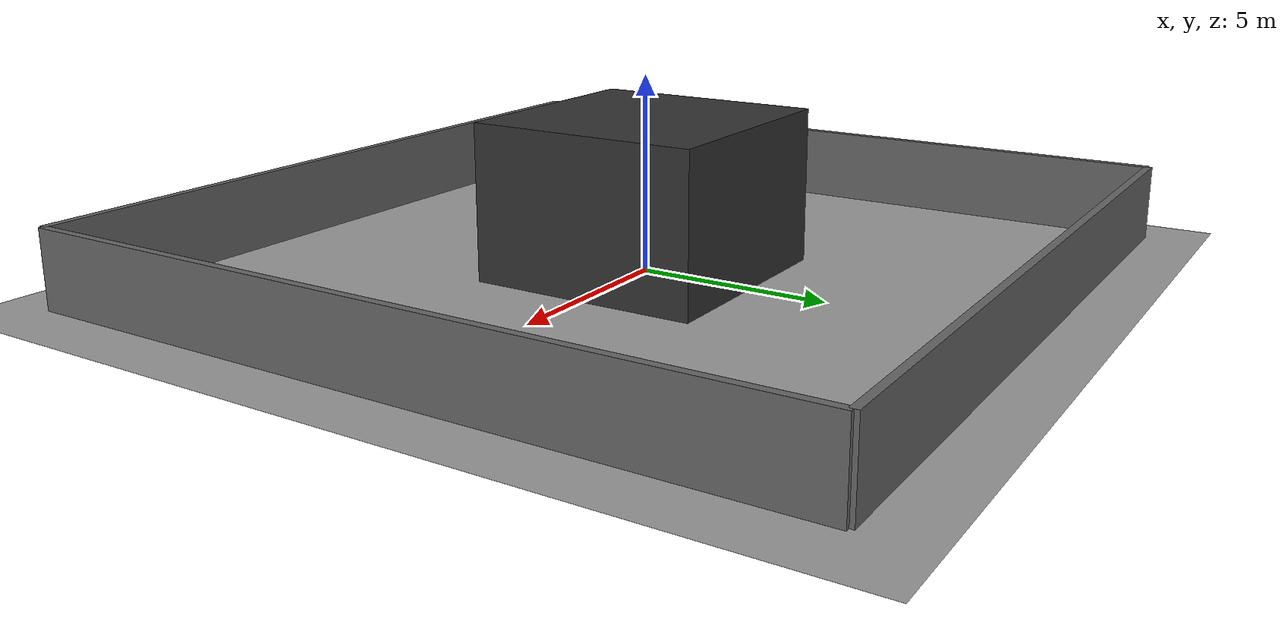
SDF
<?xml version="1.0" ?>
<!--
  World 1: Single large static obstacle directly on the robot's path.
  Robot start: x=-7, y=0  |  Goal: x=7, y=0
-->
<sdf version="1.7">
  <world name="world1_static_large">

    <gui>
      <camera name="user_camera">
        <pose>0 -20 18 0 0.8 1.5708</pose>
      </camera>
    </gui>

    <physics name="10ms" type="ode">
      <max_step_size>0.01</max_step_size>
      <real_time_factor>1.0</real_time_factor>
    </physics>

    <plugin filename="libignition-gazebo-physics-system.so"
            name="ignition::gazebo::systems::Physics"/>
    <plugin filename="libignition-gazebo-scene-broadcaster-system.so"
            name="ignition::gazebo::systems::SceneBroadcaster"/>
    <plugin filename="libignition-gazebo-user-commands-system.so"
            name="ignition::gazebo::systems::UserCommands"/>
    <plugin filename="libignition-gazebo-sensors-system.so"
            name="ignition::gazebo::systems::Sensors">
      <render_engine>ogre2</render_engine>
    </plugin>

    <light name="sun" type="directional">
      <cast_shadows>true</cast_shadows>
      <pose>0 0 20 0 0 0</pose>
      <diffuse>0.9 0.9 0.9 1</diffuse>
      <specular>0.3 0.3 0.3 1</specular>
      <attenuation><range>1000</range><constant>0.9</constant>
        <linear>0.01</linear><quadratic>0.001</quadratic></attenuation>
      <direction>-0.5 0.1 -0.9</direction>
    </light>

    <model name="ground_plane">
      <static>true</static>
      <link name="link">
        <collision name="collision">
          <geometry><plane><normal>0 0 1</normal><size>30 30</size></plane></geometry>
        </collision>
        <visual name="visual">
          <geometry><plane><normal>0 0 1</normal><size>30 30</size></plane></geometry>
          <material>
            <ambient>0.6 0.6 0.6 1</ambient>
            <diffuse>0.6 0.6 0.6 1</diffuse>
            <specular>0.1 0.1 0.1 1</specular>
          </material>
        </visual>
      </link>
    </model>

    <model name="wall_north">
      <static>true</static><pose>0 10 1 0 0 0</pose>
      <link name="link">
        <collision name="col"><geometry><box><size>20 0.2 2</size></box></geometry></collision>
        <visual name="vis"><geometry><box><size>20 0.2 2</size></box></geometry>
          <material><ambient>0.4 0.4 0.4 1</ambient><diffuse>0.4 0.4 0.4 1</diffuse></material></visual>
      </link>
    </model>
    <model name="wall_south">
      <static>true</static><pose>0 -10 1 0 0 0</pose>
      <link name="link">
        <collision name="col"><geometry><box><size>20 0.2 2</size></box></geometry></collision>
        <visual name="vis"><geometry><box><size>20 0.2 2</size></box></geometry>
          <material><ambient>0.4 0.4 0.4 1</ambient><diffuse>0.4 0.4 0.4 1</diffuse></material></visual>
      </link>
    </model>
    <model name="wall_east">
      <static>true</static><pose>10 0 1 0 0 0</pose>
      <link name="link">
        <collision name="col"><geometry><box><size>0.2 20 2</size></box></geometry></collision>
        <visual name="vis"><geometry><box><size>0.2 20 2</size></box></geometry>
          <material><ambient>0.4 0.4 0.4 1</ambient><diffuse>0.4 0.4 0.4 1</diffuse></material></visual>
      </link>
    </model>
    <model name="wall_west">
      <static>true</static><pose>-10 0 1 0 0 0</pose>
      <link name="link">
        <collision name="col"><geometry><box><size>0.2 20 2</size></box></geometry></collision>
        <visual name="vis"><geometry><box><size>0.2 20 2</size></box></geometry>
          <material><ambient>0.4 0.4 0.4 1</ambient><diffuse>0.4 0.4 0.4 1</diffuse></material></visual>
      </link>
    </model>

    <!-- Large obstacle blocking the direct path at centre -->
    <model name="obstacle_large">
      <static>true</static>
      <pose>0 0 2.0 0 0 0</pose>
      <link name="link">
        <collision name="col"><geometry><box><size>6 6 4</size></box></geometry></collision>
        <visual name="vis">
          <geometry><box><size>6 6 4</size></box></geometry>
          <material>
            <ambient>0.2 0.2 0.2 1</ambient>
            <diffuse>0.2 0.2 0.2 1</diffuse>
          </material>
        </visual>
      </link>
    </model>

  </world>
</sdf>
